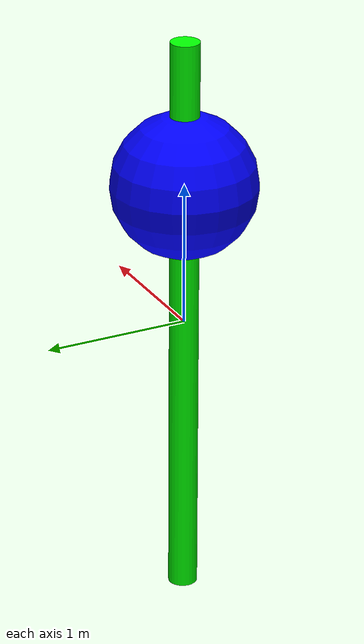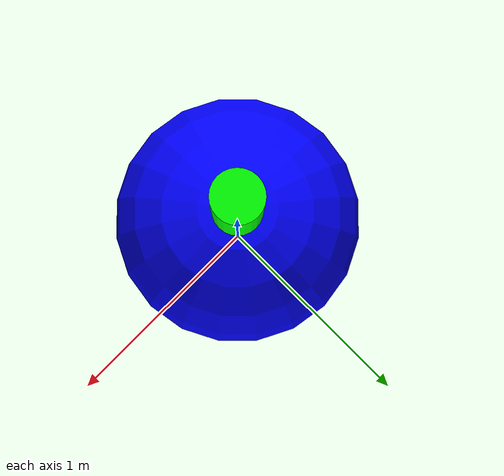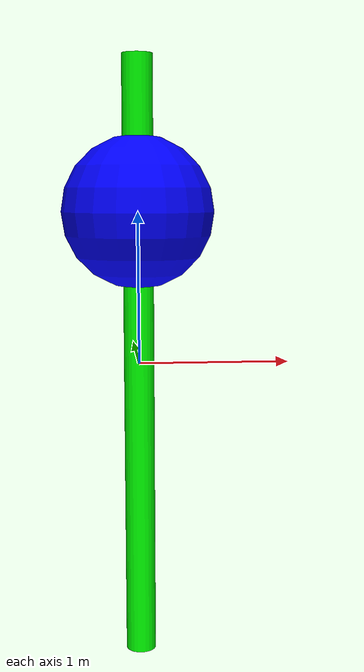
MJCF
<mujoco>
  <option gravity="0 0 -9.81"/>
  <worldbody>
    <!-- Spring -->
    <body name="spring" pos="0 0 0">
      <geom type="cylinder" size="0.1 2" density="3" rgba="0 1 0 1"/>
      <joint name="spring_joint" type="hinge" axis="0 0 1"/>
    </body>

    <!-- Mass -->
    <body name="mass" pos="0 0 1">
      <geom type="sphere" size="0.5" density="5" rgba="0 0 1 1"/>
      <joint name="mass_joint" type="free"/>
    </body>

    <!-- Surface -->
    <body name="surface" pos="0 0 -10">
      <geom type="plane" size="30 30 0.1" rgba="0.7 0.7 0.7 1" friction="1 1 1"/>
    </body>
  </worldbody>
</mujoco>
